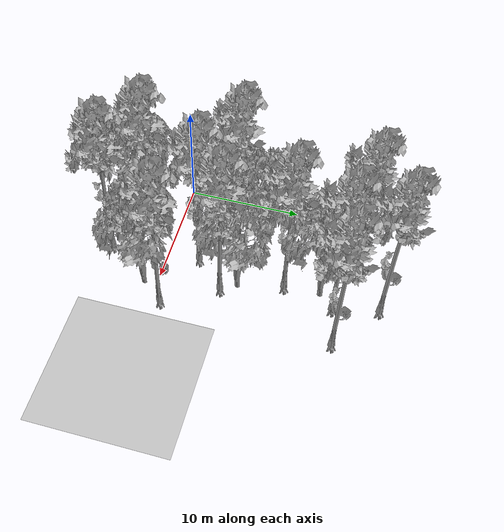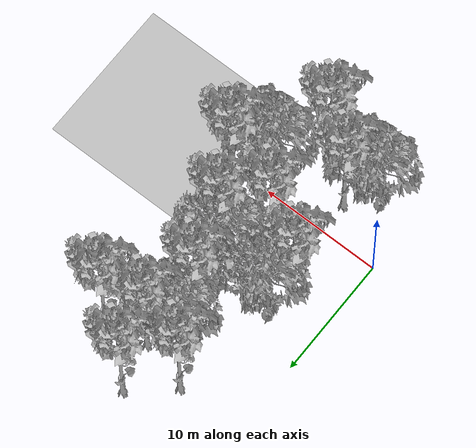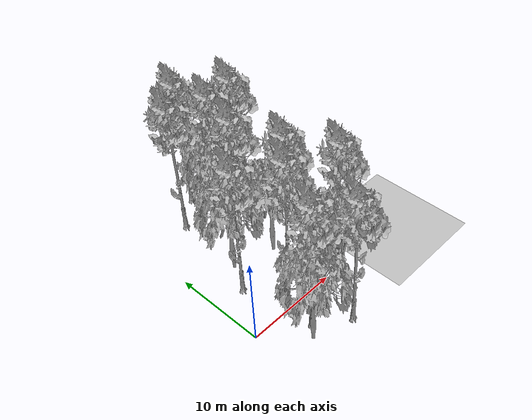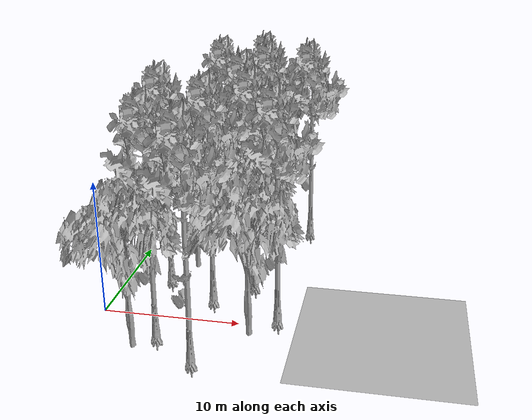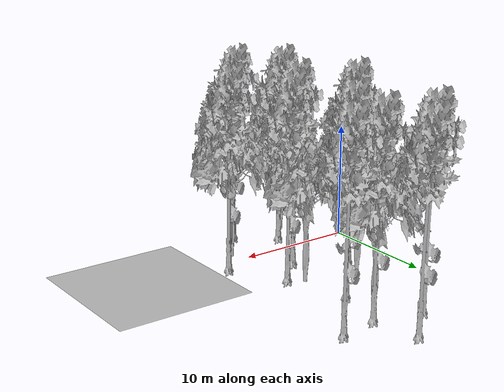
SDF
<sdf version="1.7">
 <world name="default">
  <model name="ground_plane">
   <static>1</static>
   <link name="link">
    <collision name="collision">
     <pose>20.0 0 0 0 -0 0</pose>
     <geometry><plane><normal>0 0 1</normal><size>40 40</size></plane></geometry>
     <surface><contact><ode><min_depth>0.01</min_depth><max_vel>0</max_vel></ode></contact></surface>
    </collision>
    <visual name="grass">
     <pose>20.0 0 0 0 -0 0</pose>
     <cast_shadows>0</cast_shadows>
     <geometry>
      <mesh>
       <scale>0.22052631578947368 0.22621621621621624 0.1</scale>
       <uri>model://grass_plane/meshes/grass_plane.dae</uri>
      </mesh>
     </geometry>
    </visual>
   </link>
  </model>
  <model name="Tree 7">
   <static>1</static>
   <pose>9.166929790634121 6.747726494693865 0 1.57079 -0 0</pose>
   <link name="link">
    <collision name="collision">
     <geometry><mesh><scale>3.5 5 3.5</scale><uri>model://tree_2/meshes/tree_2.obj</uri></mesh></geometry>
    </collision>
    <visual name="visual">
     <geometry><mesh><scale>3.5 5 3.5</scale><uri>model://tree_2/meshes/tree_2.obj</uri></mesh></geometry>
    </visual>
   </link>
  </model>
  <model name="Tree 15">
   <static>1</static>
   <pose>8.010679790634121 -5.104125357157985 0 1.57079 -0 0</pose>
   <link name="link">
    <collision name="collision">
     <geometry><mesh><scale>3.5 5 3.5</scale><uri>model://tree_9/meshes/tree_9.obj</uri></mesh></geometry>
    </collision>
    <visual name="visual">
     <geometry><mesh><scale>3.5 5 3.5</scale><uri>model://tree_9/meshes/tree_9.obj</uri></mesh></geometry>
    </visual>
   </link>
  </model>
  <model name="Tree 19">
   <static>1</static>
   <pose>12.635679790634121 0.8218005687679408 0 1.57079 -0 0</pose>
   <link name="link">
    <collision name="collision">
     <geometry><mesh><scale>3.5 5 3.5</scale><uri>model://tree_9/meshes/tree_9.obj</uri></mesh></geometry>
    </collision>
    <visual name="visual">
     <geometry><mesh><scale>3.5 5 3.5</scale><uri>model://tree_9/meshes/tree_9.obj</uri></mesh></geometry>
    </visual>
   </link>
  </model>
  <model name="Tree 22">
   <static>1</static>
   <pose>3.3856797906341214 5.266245013212387 0 1.57079 -0 0</pose>
   <link name="link">
    <collision name="collision">
     <geometry><mesh><scale>3.5 5 3.5</scale><uri>model://tree_9/meshes/tree_9.obj</uri></mesh></geometry>
    </collision>
    <visual name="visual">
     <geometry><mesh><scale>3.5 5 3.5</scale><uri>model://tree_9/meshes/tree_9.obj</uri></mesh></geometry>
    </visual>
   </link>
  </model>
  <model name="Tree 31">
   <static>1</static>
   <pose>7.432554790634121 2.797109210743251 0 1.57079 -0 0</pose>
   <link name="link">
    <collision name="collision">
     <geometry><mesh><scale>3.5 5 3.5</scale><uri>model://tree_9/meshes/tree_9.obj</uri></mesh></geometry>
    </collision>
    <visual name="visual">
     <geometry><mesh><scale>3.5 5 3.5</scale><uri>model://tree_9/meshes/tree_9.obj</uri></mesh></geometry>
    </visual>
   </link>
  </model>
  <model name="Tree 47">
   <static>1</static>
   <pose>8.588804790634121 19.09340550703955 0 1.57079 -0 0</pose>
   <link name="link">
    <collision name="collision">
     <geometry><mesh><scale>3.5 5 3.5</scale><uri>model://tree_9/meshes/tree_9.obj</uri></mesh></geometry>
    </collision>
    <visual name="visual">
     <geometry><mesh><scale>3.5 5 3.5</scale><uri>model://tree_9/meshes/tree_9.obj</uri></mesh></geometry>
    </visual>
   </link>
  </model>
  <model name="Tree 55">
   <static>1</static>
   <pose>10.901304790634121 -1.1535080732073695 0 1.57079 -0 0</pose>
   <link name="link">
    <collision name="collision">
     <geometry><mesh><scale>3.5 5 3.5</scale><uri>model://tree_2/meshes/tree_2.obj</uri></mesh></geometry>
    </collision>
    <visual name="visual">
     <geometry><mesh><scale>3.5 5 3.5</scale><uri>model://tree_2/meshes/tree_2.obj</uri></mesh></geometry>
    </visual>
   </link>
  </model>
  <model name="Tree 71">
   <static>1</static>
   <pose>9.455992290634121 15.142788223088928 0 1.57079 -0 0</pose>
   <link name="link">
    <collision name="collision">
     <geometry><mesh><scale>3.5 5 3.5</scale><uri>model://tree_9/meshes/tree_9.obj</uri></mesh></geometry>
    </collision>
    <visual name="visual">
     <geometry><mesh><scale>3.5 5 3.5</scale><uri>model://tree_9/meshes/tree_9.obj</uri></mesh></geometry>
    </visual>
   </link>
  </model>
  <model name="Tree 78">
   <static>1</static>
   <pose>4.830992290634121 -2.634989554688847 0 1.57079 -0 0</pose>
   <link name="link">
    <collision name="collision">
     <geometry><mesh><scale>3.5 5 3.5</scale><uri>model://tree_9/meshes/tree_9.obj</uri></mesh></geometry>
    </collision>
    <visual name="visual">
     <geometry><mesh><scale>3.5 5 3.5</scale><uri>model://tree_9/meshes/tree_9.obj</uri></mesh></geometry>
    </visual>
   </link>
  </model>
  <model name="Tree 79">
   <static>1</static>
   <pose>8.299742290634121 10.698343778644485 0 1.57079 -0 0</pose>
   <link name="link">
    <collision name="collision">
     <geometry><mesh><scale>3.5 5 3.5</scale><uri>model://tree_9/meshes/tree_9.obj</uri></mesh></geometry>
    </collision>
    <visual name="visual">
     <geometry><mesh><scale>3.5 5 3.5</scale><uri>model://tree_9/meshes/tree_9.obj</uri></mesh></geometry>
    </visual>
   </link>
  </model>
  <model name="Tree 83">
   <static>1</static>
   <pose>12.924742290634121 15.801224437080698 0 1.57079 -0 0</pose>
   <link name="link">
    <collision name="collision">
     <geometry><mesh><scale>3.5 5 3.5</scale><uri>model://tree_9/meshes/tree_9.obj</uri></mesh></geometry>
    </collision>
    <visual name="visual">
     <geometry><mesh><scale>3.5 5 3.5</scale><uri>model://tree_9/meshes/tree_9.obj</uri></mesh></geometry>
    </visual>
   </link>
  </model>
  <model name="Tree 103">
   <static>1</static>
   <pose>10.034117290634121 5.4308540667103244 0 1.57079 -0 0</pose>
   <link name="link">
    <collision name="collision">
     <geometry><mesh><scale>3.5 5 3.5</scale><uri>model://tree_9/meshes/tree_9.obj</uri></mesh></geometry>
    </collision>
    <visual name="visual">
     <geometry><mesh><scale>3.5 5 3.5</scale><uri>model://tree_9/meshes/tree_9.obj</uri></mesh></geometry>
    </visual>
   </link>
  </model>
  <model name="Tree 110">
   <static>1</static>
   <pose>5.409117290634121 16.295051597574528 0 1.57079 -0 0</pose>
   <link name="link">
    <collision name="collision">
     <geometry><mesh><scale>3.5 5 3.5</scale><uri>model://tree_9/meshes/tree_9.obj</uri></mesh></geometry>
    </collision>
    <visual name="visual">
     <geometry><mesh><scale>3.5 5 3.5</scale><uri>model://tree_9/meshes/tree_9.obj</uri></mesh></geometry>
    </visual>
   </link>
  </model>
  <model name="Tree 142">
   <static>1</static>
   <pose>4.686461040634121 7.899989869179464 0 1.57079 -0 0</pose>
   <link name="link">
    <collision name="collision">
     <geometry><mesh><scale>3.5 5 3.5</scale><uri>model://tree_2/meshes/tree_2.obj</uri></mesh></geometry>
    </collision>
    <visual name="visual">
     <geometry><mesh><scale>3.5 5 3.5</scale><uri>model://tree_2/meshes/tree_2.obj</uri></mesh></geometry>
    </visual>
   </link>
  </model>
  <model name="Tree 143">
   <static>1</static>
   <pose>8.155211040634121 13.825915795105395 0 1.57079 -0 0</pose>
   <link name="link">
    <collision name="collision">
     <geometry><mesh><scale>3.5 5 3.5</scale><uri>model://tree_2/meshes/tree_2.obj</uri></mesh></geometry>
    </collision>
    <visual name="visual">
     <geometry><mesh><scale>3.5 5 3.5</scale><uri>model://tree_2/meshes/tree_2.obj</uri></mesh></geometry>
    </visual>
   </link>
  </model>
  <model name="Tree 150">
   <static>1</static>
   <pose>3.5302110406341214 -3.9518619826723906 0 1.57079 -0 0</pose>
   <link name="link">
    <collision name="collision">
     <geometry><mesh><scale>3.5 5 3.5</scale><uri>model://tree_2/meshes/tree_2.obj</uri></mesh></geometry>
    </collision>
    <visual name="visual">
     <geometry><mesh><scale>3.5 5 3.5</scale><uri>model://tree_2/meshes/tree_2.obj</uri></mesh></geometry>
    </visual>
   </link>
  </model>
 </world>
</sdf>
